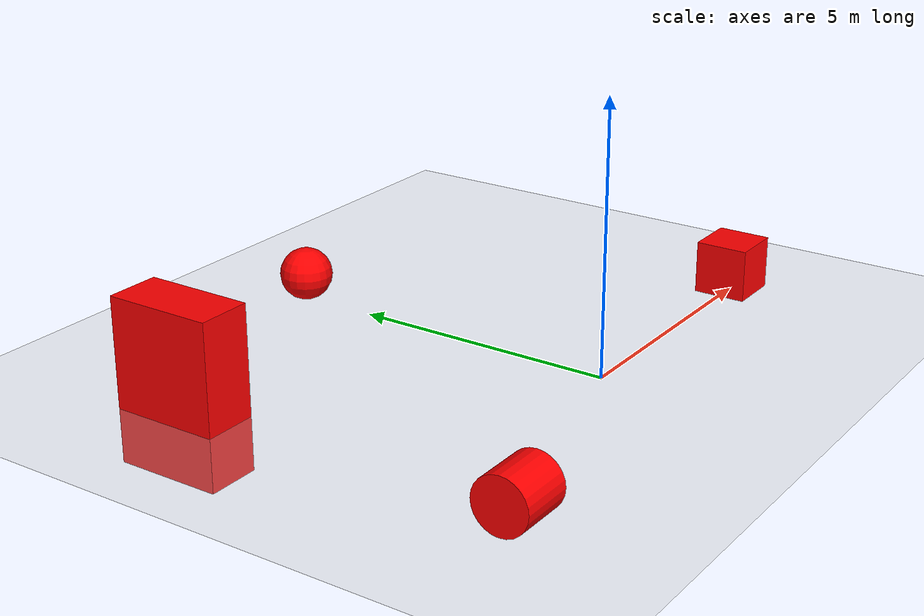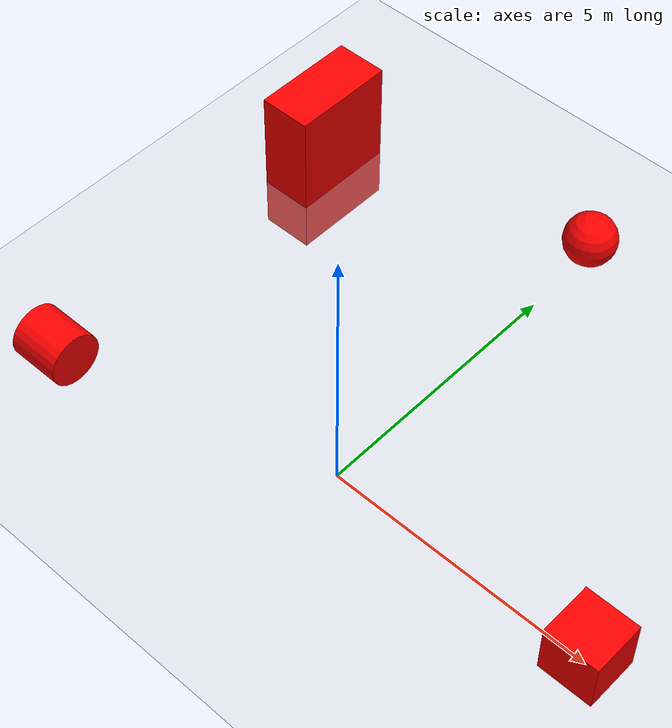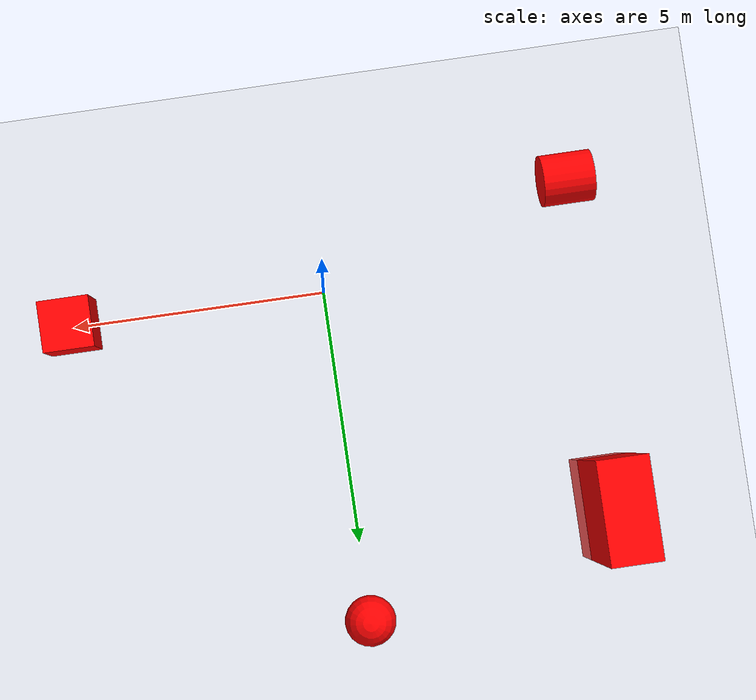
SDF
<?xml version="1.0" ?>
<sdf version="1.7">
  <world name="shapes">
        <physics name='1ms' type='ignored'>
            <max_step_size>0.003</max_step_size>
            <real_time_factor>1</real_time_factor>
            <real_time_update_rate>1000</real_time_update_rate>
        </physics>
        <plugin name='ignition::gazebo::systems::Physics' filename='ignition-gazebo-physics-system' />
        <plugin name='ignition::gazebo::systems::UserCommands' filename='ignition-gazebo-user-commands-system' />
        <plugin name='ignition::gazebo::systems::SceneBroadcaster' filename='ignition-gazebo-scene-broadcaster-system' />
        <plugin name='ignition::gazebo::systems::Contact' filename='ignition-gazebo-contact-system' />

        <gravity>0 0 -9.8</gravity>
        <magnetic_field>6e-06 2.3e-05 -4.2e-05</magnetic_field>
        <atmosphere type='adiabatic' />
        <scene>
            <ambient>0.4 0.4 0.4 1</ambient>
            <background>0.7 0.7 0.7 1</background>
            <shadows>1</shadows>
        </scene>

        <include> <uri>https://fuel.gazebosim.org/1.0/OpenRobotics/models/Sun</uri> </include>
        <include> <uri>https://fuel.gazebosim.org/1.0/OpenRobotics/models/Ground Plane</uri> </include>

    <model name="box">
      <pose>5 0 0.5 0 0 0</pose>
      <link name="link">
        <collision name="collision">
          <geometry>
            <box>
              <size>1 1 1</size>
            </box>
          </geometry>
        </collision>
        <visual name="visual">
          <geometry>
            <box>
              <size>1 1 1</size>
            </box>
          </geometry>
          <material>
              <ambient>1 0 0 1</ambient>
              <diffuse>1 0 0 1</diffuse>
              <specular>0.1 0.1 0.1 1</specular>
              <shininess>50.0</shininess>
          </material>
        </visual>
      </link>
    </model>

    <model name="sphere">
      <pose>0 6.5 0.5 0 0 0</pose>
      <link name="link">
        <collision name="collision">
          <geometry>
            <sphere>
              <radius>0.5</radius>
            </sphere>
          </geometry>
        </collision>
        <visual name="visual">
          <geometry>
            <sphere>
              <radius>0.5</radius>
            </sphere>
          </geometry>
          <material>
              <ambient>1 0 0 1</ambient>
              <diffuse>1 0 0 1</diffuse>
              <specular>0.1 0.1 0.1 1</specular>
              <shininess>50.0</shininess>
          </material>
        </visual>
      </link>
    </model>

    <model name="cylinder">
      <pose>-5 -1.5 0.5 0 1.5707 0</pose>
      <link name="link">
        <collision name="collision">
          <geometry>
            <cylinder>
              <radius>0.5</radius>
              <length>1.0</length>
            </cylinder>
          </geometry>
        </collision>
        <visual name="visual">
          <geometry>
            <cylinder>
              <radius>0.5</radius>
              <length>1.0</length>
            </cylinder>
          </geometry>
          <material>
              <ambient>1 0 0 1</ambient>
              <diffuse>1 0 0 1</diffuse>
              <specular>0.1 0.1 0.1 1</specular>
              <shininess>50.0</shininess>
          </material>
        </visual>
      </link>
    </model>

    <model name="box2">
      <pose>-5 5 0.5 0 0 0</pose>
      <link name="link">
        <collision name="collision">
          <geometry>
            <box>
              <size>1 2 3</size>
            </box>
          </geometry>
        </collision>
        <visual name="visual">
          <geometry>
            <box>
              <size>1 2 3</size>
            </box>
          </geometry>
          <material>
              <ambient>1 0 0 1</ambient>
              <diffuse>1 0 0 1</diffuse>
              <specular>0.1 0.1 0.1 1</specular>
              <shininess>50.0</shininess>
          </material>
        </visual>
      </link>
    </model>
  </world>
</sdf>
